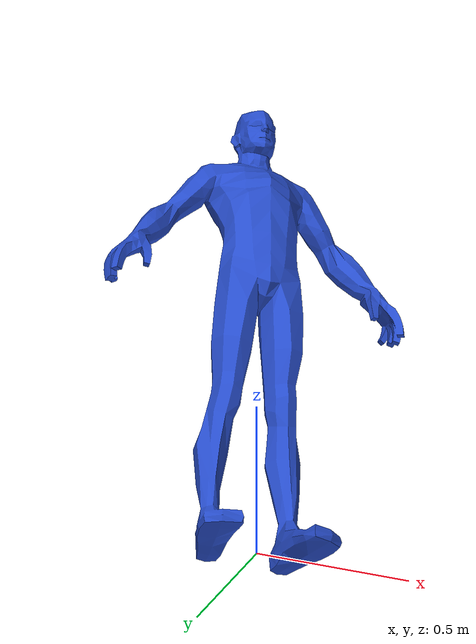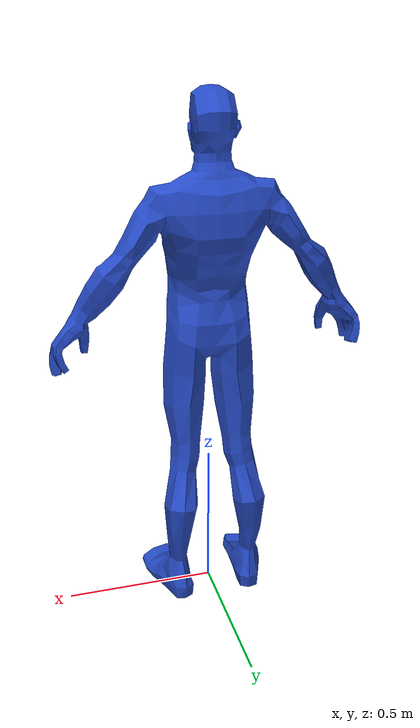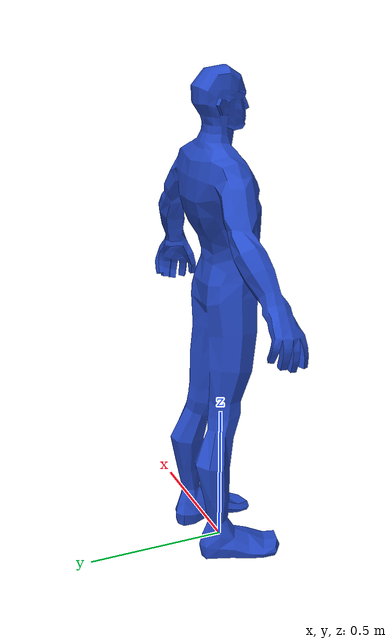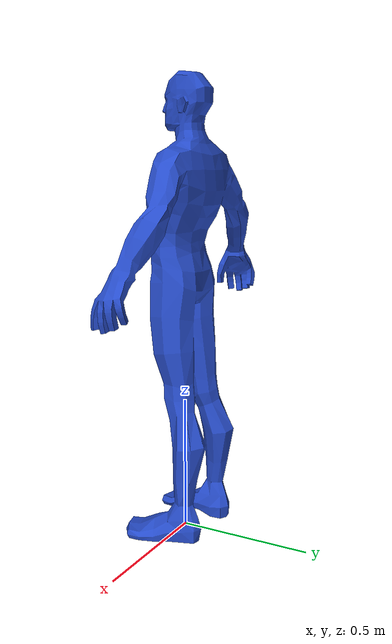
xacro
<?xml version="1.0" ?>
<robot name="body" xmlns:xacro="http://www.ros.org/wiki/xacro">

<xacro:include filename="$(find body_description)/urdf/materials.xacro" />
<xacro:include filename="$(find body_description)/urdf/body.trans" />
<xacro:include filename="$(find body_description)/urdf/body.gazebo" />
<link name="base_link">
  <inertial>
    <origin xyz="-2.2871398051256495e-05 0.011741427280317344 0.9722716311760781" rpy="0 0 0"/>
    <mass value="440.39468900186193"/>
    <inertia ixx="77.017262" iyy="84.659263" izz="10.1884" ixy="-0.000672" iyz="0.391656" ixz="0.00183"/>
  </inertial>
  <visual>
    <origin xyz="0 0 0" rpy="0 0 0"/>
    <geometry>
      <mesh filename="package://body_description/meshes/base_link.stl" scale="0.001 0.001 0.001"/>
    </geometry>
  </visual>
  <collision>
    <origin xyz="0 0 0" rpy="0 0 0"/>
    <geometry>
      <mesh filename="package://body_description/meshes/base_link.stl" scale="0.001 0.001 0.001"/>
    </geometry>
  </collision>
</link>
<gazebo reference="base_link">
  <material>Gazebo/Blue</material>
</gazebo>

</robot>

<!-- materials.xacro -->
<robot name="body" xmlns:xacro="http://www.ros.org/wiki/xacro" >

<material name="silver_default">
  <color rgba="0.700 0.700 0.700 1.000"/>
</material>
<material name="steel_satin">
  <color rgba="1.0 0 0 0"/>
</material>

</robot>

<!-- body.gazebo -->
<robot name="body" xmlns:xacro="http://www.ros.org/wiki/xacro" >

<xacro:property name="body_color" value="Gazebo/Silver" />

<gazebo>
  <plugin name="control" filename="libgazebo_ros_control.so"/>
  <plugin name="object_controller" filename="libgazebo_ros_planar_move.so">
    <commandTopic>/human/cmd_vel</commandTopic>
    <odometryTopic>/human/odom</odometryTopic>
    <odometryFrame>human_odom</odometryFrame>
    <odometryRate>20.0</odometryRate>
    <robotBaseFrame>human_base_footprint</robotBaseFrame>
  </plugin>
</gazebo>

<gazebo reference="base_link">
  <material>${body_color}</material>
  <mu1>0</mu1>
  <mu2>0</mu2>
  <selfCollide>true</selfCollide>
  <gravity>true</gravity>
</gazebo>

</robot>
